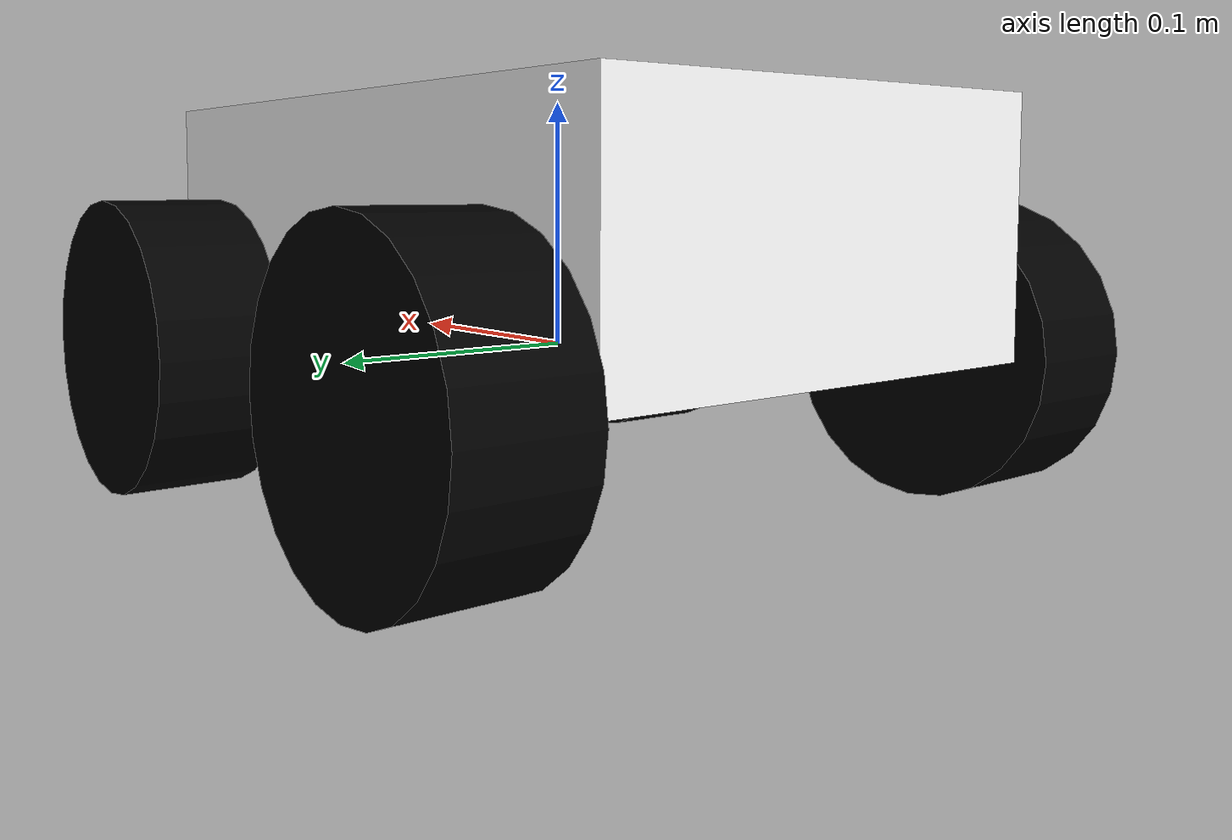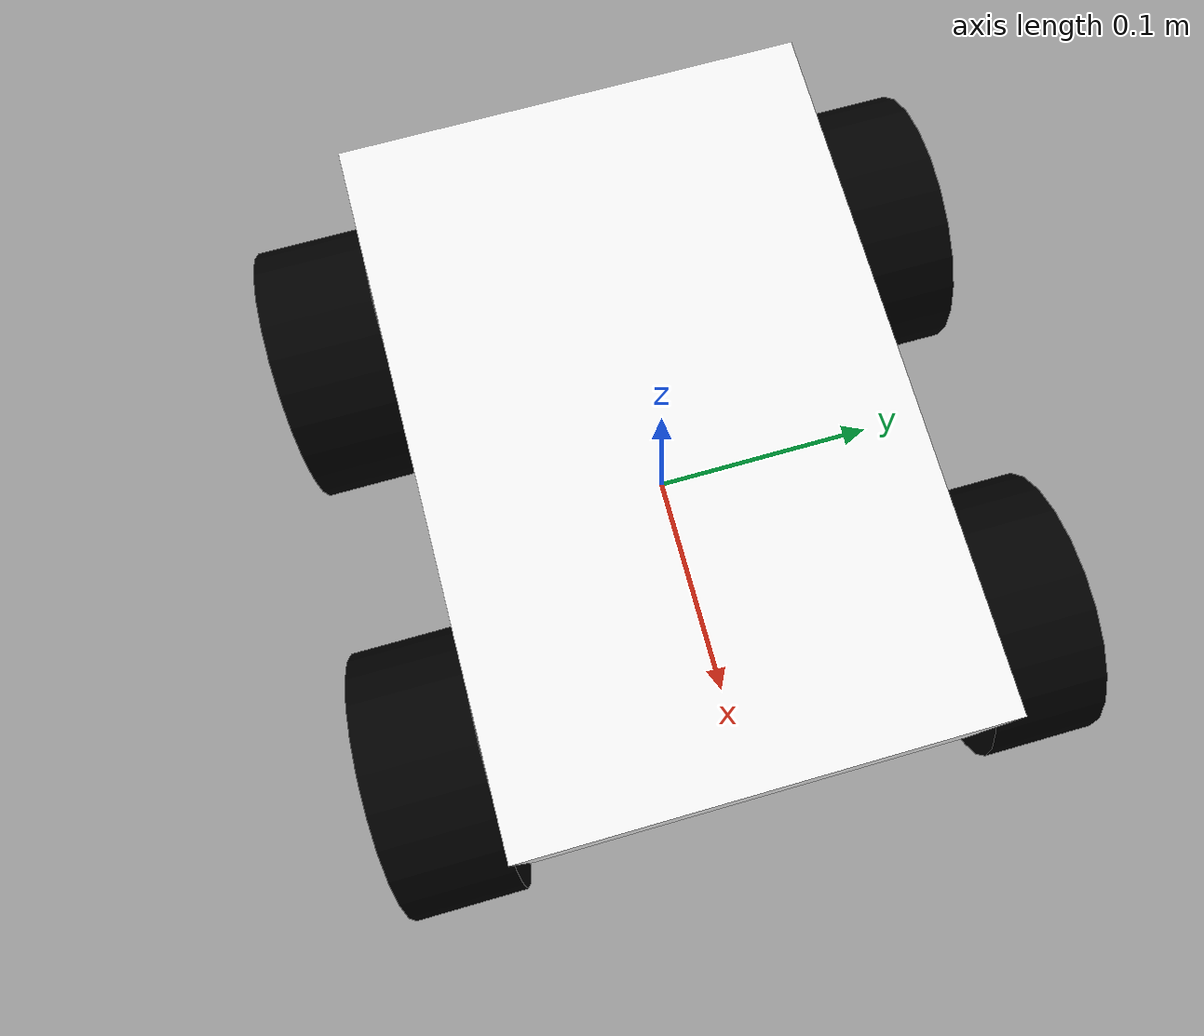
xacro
<?xml version="1.0"?>

<robot name="robot" xmlns:xacro="http://www.ros.org/wiki/xacro">

    <xacro:property name="length_wheel" value="0.05" />
    <xacro:property name="radius_wheel" value="0.06" />
    <xacro:property name="PI" value="3.1415926"/>
    <xacro:macro name="default_inertial" params="mass">
        <inertial>
            <mass value="${mass}" />
            <inertia ixx="0.01" ixy="0.0" ixz="0.0"
                    iyy="0.01" iyz="0.0" izz="0.01" />
        </inertial>
    </xacro:macro>

    <link name="base_link">
        <visual>
            <geometry>
                <box size="0.2 .3 .1"/>
            </geometry>
            <origin rpy="0 0 ${PI/2}" xyz="0 0 0.05"/>
            <material name="white">
                <color rgba="1 1 1 1"/>
            </material>
        </visual>
        <collision>
            <geometry>
                <box size="0.2 .3 0.1"/>
            </geometry>
        </collision>
        <xacro:default_inertial mass="8.2"/>
    </link>

    <link name="wheel_1">
        <visual>
            <geometry>
                <cylinder length="${length_wheel}" radius="${radius_wheel}"/>
            </geometry>
            <origin rpy="0 0 0" xyz="0 0 0"/>
            <material name="black">
                <color rgba="0 0 0 1"/>
            </material>
        </visual>
        <collision>
            <geometry>
                <cylinder length="${length_wheel}" radius="${radius_wheel}"/>
            </geometry>
        </collision>
        <mu1>0.5</mu1>
        <mu2>0.5</mu2>
        <xacro:default_inertial mass="0.5"/>
    </link>

    <link name="wheel_2">
        <visual>
            <geometry>
                <cylinder length="${length_wheel}" radius="${radius_wheel}"/>
            </geometry>
            <origin rpy="0 0 0" xyz="0 0 0"/>
            <material name="black"/>
        </visual>
        <collision>
            <geometry>
                <cylinder length="${length_wheel}" radius="${radius_wheel}"/>
            </geometry>
        </collision>
        <mu1>0.5</mu1>
        <mu2>0.5</mu2>
        <xacro:default_inertial mass="0.5"/>
    </link>

    <link name="wheel_3">
        <visual>
            <geometry>
                <cylinder length="${length_wheel}" radius="${radius_wheel}"/>
            </geometry>
            <origin rpy="0 0 0" xyz="0 0 0"/>
            <material name="black"/>
        </visual>
        <collision>
            <geometry>
                <cylinder length="${length_wheel}" radius="${radius_wheel}"/>
            </geometry>
        </collision>
        <mu1>0.5</mu1>
        <mu2>0.5</mu2>
        <xacro:default_inertial mass="0.5"/>
    </link>

    <link name="wheel_4">
        <visual>
            <geometry>
                <cylinder length="${length_wheel}" radius="${radius_wheel}"/>
            </geometry>
            <origin rpy="0 0 0" xyz="0 0 0" />
            <material name="black"/>
        </visual>
        <collision>
            <geometry>
                <cylinder length="${length_wheel}" radius="${radius_wheel}"/>
            </geometry>
        </collision>
        <mu1>0.5</mu1>
        <mu2>0.5</mu2>
        <xacro:default_inertial mass="0.5"/>
    </link>

    <joint name="base_to_wheel1" type="continuous">
        <parent link="base_link"/>
        <child link="wheel_1"/>
        <origin rpy="${-PI/2} 0 0" xyz="0.1 0.13 0"/>
        <axis xyz="0 0 1" />
    </joint>

    <joint name="base_to_wheel2" type="continuous">
        <axis xyz="0 0 1" />
        <anchor xyz="0 0 0" />
        <limit effort="100" velocity="100" />
        <parent link="base_link"/>
        <child link="wheel_2"/>
        <origin rpy="${-PI/2} 0 0" xyz="-0.1 0.13 0"/>
    </joint>

    <joint name="base_to_wheel3" type="continuous">
        <parent link="base_link"/>
        <axis xyz="0 0 1" />
        <child link="wheel_3"/>
        <origin rpy="${-PI/2} 0 0" xyz="0.1 -0.13 0"/>
    </joint>

    <joint name="base_to_wheel4" type="continuous">
        <parent link="base_link"/>
        <axis xyz="0 0 1" />
        <child link="wheel_4"/>
        <origin rpy="${-PI/2} 0 0" xyz="-0.1 -0.13 0"/>
    </joint>

    <!-- Livox-Mid360  -->
    <link name="livox_frame">

    </link>

    <joint name="livox_joint" type="fixed">
        <origin xyz="0 0.0 0.175" rpy="0 0 0"/>
      <parent link="base_link"/>
      <child link="livox_frame"/>
    </joint>

</robot>
